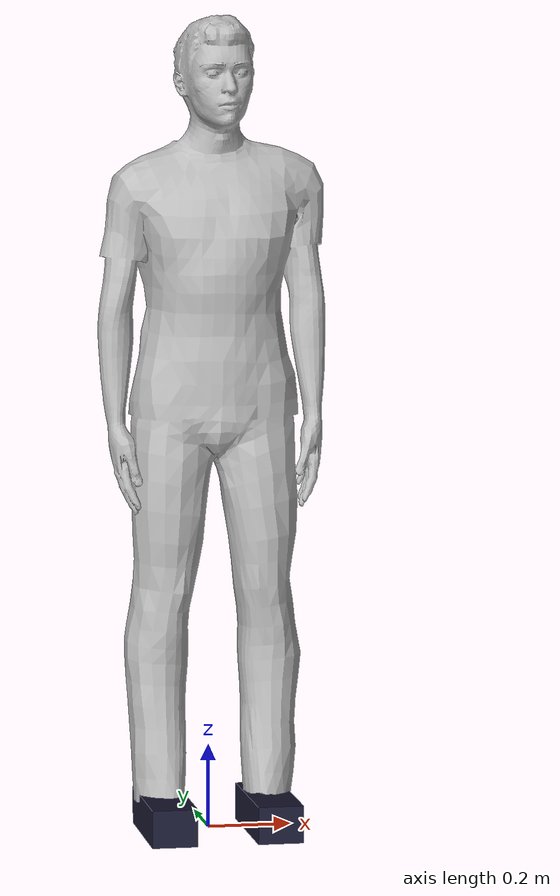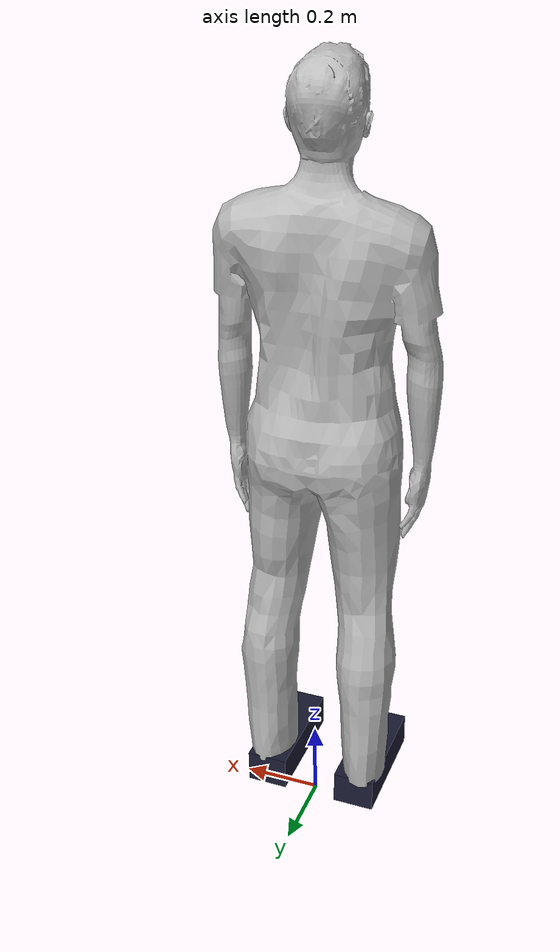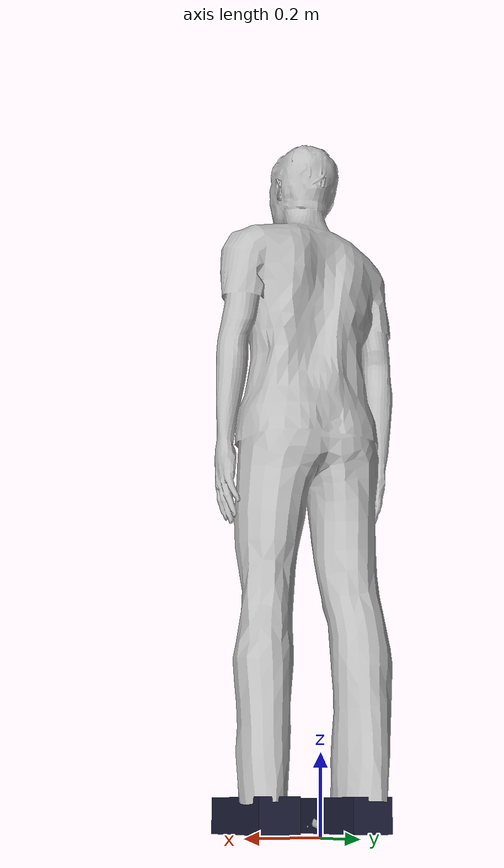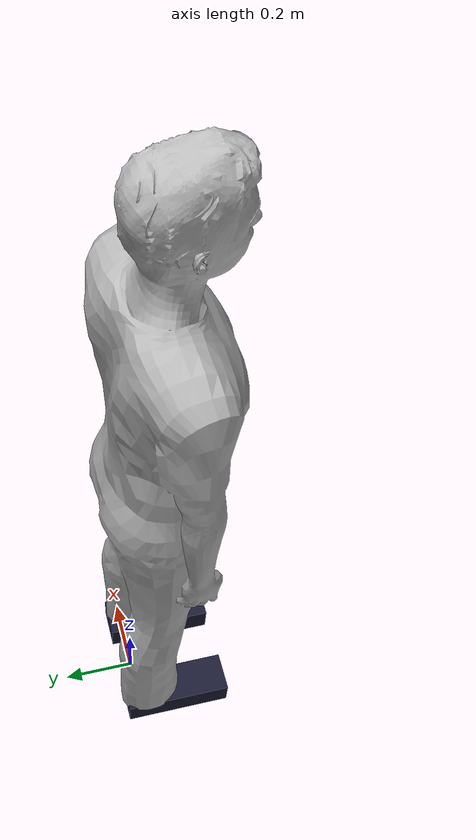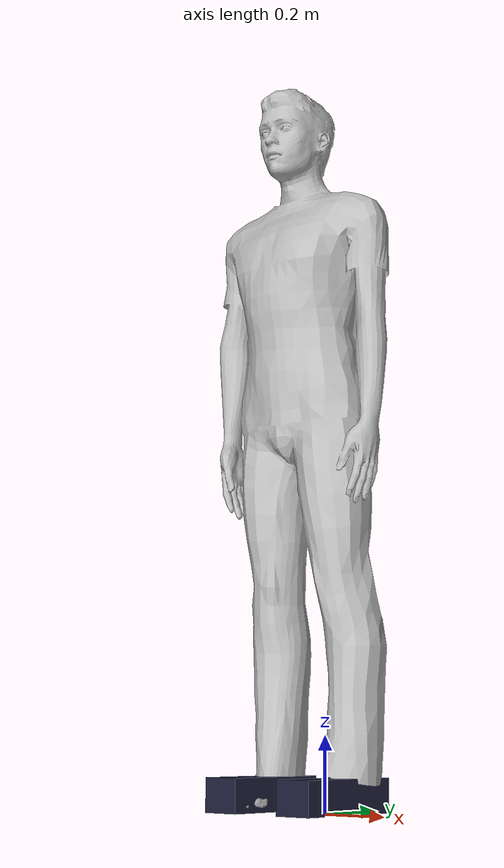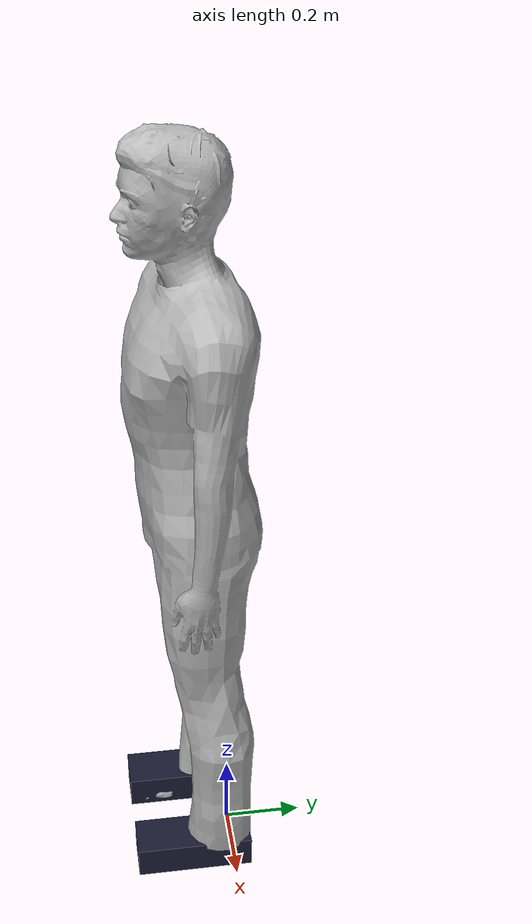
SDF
<?xml version="1.0" ?>
<sdf version="1.5">
  <model name="person_standing">
    <link name="link">
      <inertial>
        <pose>0 -0.1 0.95 0 0 0</pose>
        <mass>80.0</mass>
        <inertia>
          <ixx>24.88</ixx>
          <ixy>0</ixy>
          <ixz>0</ixz>
          <iyy>25.73</iyy>
          <iyz>0</iyz>
          <izz>2.48</izz>
        </inertia>
      </inertial>

      <collision name="bottom">
        <pose>0 -0.1 0.01 0 0 0</pose>
        <geometry>
          <box>
            <size>0.5 0.35 0.02</size>
          </box>
        </geometry>
      </collision>

      <collision name="person">
        <pose>0 0 0.02 0.04 0 0</pose>
        <geometry>
          <mesh>
            <uri>model://person_standing/meshes/standing.dae</uri>
          </mesh>
        </geometry>
      </collision>

      <visual name="visual">
        <pose>0 0 0.02 0.04 0 0</pose>
        <geometry>
          <mesh>
            <uri>model://person_standing/meshes/standing.dae</uri>
          </mesh>
        </geometry>
      </visual>

      <visual name="left_shoe">
        <pose>0.127247 -0.10888199999999992 0.051576 0 0 0</pose>
        <geometry>
          <box>
            <size>0.107316 0.298547 0.087956</size>
          </box>
        </geometry>
        <!-- dark blue -->
        <material>
          <ambient>0.1 0.1 0.1 1</ambient>
          <diffuse>0.1 0.1 0.2 1</diffuse>
          <specular>0 0 0 0</specular>
          <emissive>0 0 0 1</emissive>
        </material>
      </visual>

      <visual name="right_shoe">
        <pose>-0.122268 -0.10888199999999992 0.051576 0 0 0</pose>
        <geometry>
          <box>
            <size>0.107316 0.298547 0.087956</size>
          </box>
        </geometry>
        <!-- dark blue -->
        <material>
          <ambient>0.1 0.1 0.1 1</ambient>
          <diffuse>0.1 0.1 0.2 1</diffuse>
          <specular>0 0 0 0</specular>
          <emissive>0 0 0 1</emissive>
        </material>
      </visual>

    </link>
  </model>
</sdf>
